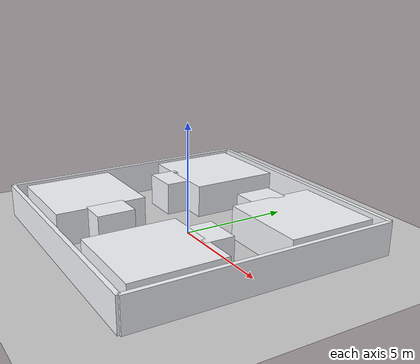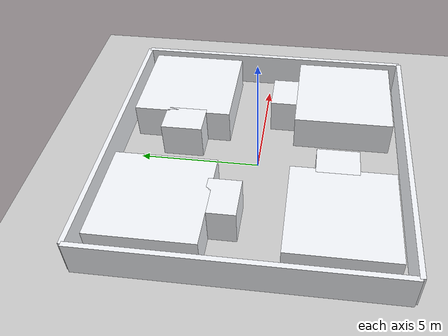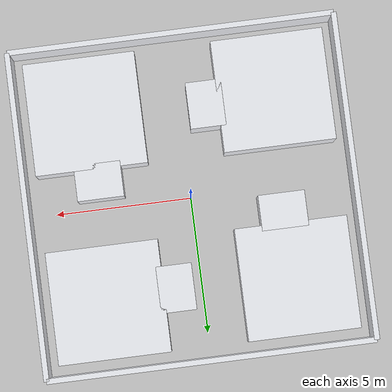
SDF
<?xml version="1.0" ?>
<sdf version="1.6">
<world name="interaction_hub">
  <plugin name='gazebo_ros_state' filename='libgazebo_ros_state.so'>
    <ros>
      <argument>model_states:=model_states_demo</argument>
    </ros>
    <update_rate>1.0</update_rate>
  </plugin>

  <include>
    <uri>model://ground_plane</uri>
  </include>
  <light name="studio_sun" type="directional">
    <cast_shadows>1</cast_shadows>
    <pose>0 0 18 0 -0.35 0.2</pose>
    <diffuse>0.96 0.94 0.90 1</diffuse>
    <specular>0.16 0.16 0.16 1</specular>
    <attenuation>
      <range>1000</range>
      <constant>0.82</constant>
      <linear>0.006</linear>
      <quadratic>0.0008</quadratic>
    </attenuation>
    <direction>-0.35 0.18 -0.92</direction>
  </light>
  <light name="fill_light" type="point">
    <pose>0 0 8 0 0 0</pose>
    <diffuse>0.40 0.45 0.50 1</diffuse>
    <specular>0.03 0.03 0.03 1</specular>
    <attenuation>
      <range>28</range>
      <constant>0.72</constant>
      <linear>0.02</linear>
      <quadratic>0.001</quadratic>
    </attenuation>
  </light>
  <scene>
    <ambient>0.56 0.58 0.62 1</ambient>
    <background>0.90 0.93 0.98 1</background>
    <shadows>1</shadows>
  </scene>

  <model name="b_north">
    <static>true</static>
    <pose>0.00 6.00 0.75 0 0 0</pose>
    <link name="link">
      <collision name="collision">
        <geometry>
          <box><size>12.00 0.20 1.5</size></box>
        </geometry>
      </collision>
      <visual name="visual">
        <geometry>
          <box><size>12.00 0.20 1.5</size></box>
        </geometry>
        <cast_shadows>true</cast_shadows>
        <material>
          <ambient>0.88 0.90 0.94 1</ambient>
          <diffuse>0.96 0.97 0.99 1</diffuse>
          <specular>0.08 0.08 0.09 1</specular>
          <emissive>0 0 0 1</emissive>
        </material>
      </visual>
    </link>
  </model>

  <model name="b_south">
    <static>true</static>
    <pose>0.00 -6.00 0.75 0 0 0</pose>
    <link name="link">
      <collision name="collision">
        <geometry>
          <box><size>12.00 0.20 1.5</size></box>
        </geometry>
      </collision>
      <visual name="visual">
        <geometry>
          <box><size>12.00 0.20 1.5</size></box>
        </geometry>
        <cast_shadows>true</cast_shadows>
        <material>
          <ambient>0.88 0.90 0.94 1</ambient>
          <diffuse>0.96 0.97 0.99 1</diffuse>
          <specular>0.08 0.08 0.09 1</specular>
          <emissive>0 0 0 1</emissive>
        </material>
      </visual>
    </link>
  </model>

  <model name="b_east">
    <static>true</static>
    <pose>6.00 0.00 0.75 0 0 0</pose>
    <link name="link">
      <collision name="collision">
        <geometry>
          <box><size>0.20 12.00 1.5</size></box>
        </geometry>
      </collision>
      <visual name="visual">
        <geometry>
          <box><size>0.20 12.00 1.5</size></box>
        </geometry>
        <cast_shadows>true</cast_shadows>
        <material>
          <ambient>0.88 0.90 0.94 1</ambient>
          <diffuse>0.96 0.97 0.99 1</diffuse>
          <specular>0.08 0.08 0.09 1</specular>
          <emissive>0 0 0 1</emissive>
        </material>
      </visual>
    </link>
  </model>

  <model name="b_west">
    <static>true</static>
    <pose>-6.00 0.00 0.75 0 0 0</pose>
    <link name="link">
      <collision name="collision">
        <geometry>
          <box><size>0.20 12.00 1.5</size></box>
        </geometry>
      </collision>
      <visual name="visual">
        <geometry>
          <box><size>0.20 12.00 1.5</size></box>
        </geometry>
        <cast_shadows>true</cast_shadows>
        <material>
          <ambient>0.88 0.90 0.94 1</ambient>
          <diffuse>0.96 0.97 0.99 1</diffuse>
          <specular>0.08 0.08 0.09 1</specular>
          <emissive>0 0 0 1</emissive>
        </material>
      </visual>
    </link>
  </model>

  <model name="quad_sw">
    <static>true</static>
    <pose>-3.45 -3.45 0.75 0 0 0</pose>
    <link name="link">
      <collision name="collision">
        <geometry>
          <box><size>4.10 4.10 1.5</size></box>
        </geometry>
      </collision>
      <visual name="visual">
        <geometry>
          <box><size>4.10 4.10 1.5</size></box>
        </geometry>
        <cast_shadows>true</cast_shadows>
        <material>
          <ambient>0.88 0.90 0.94 1</ambient>
          <diffuse>0.96 0.97 0.99 1</diffuse>
          <specular>0.08 0.08 0.09 1</specular>
          <emissive>0 0 0 1</emissive>
        </material>
      </visual>
    </link>
  </model>

  <model name="quad_nw">
    <static>true</static>
    <pose>-3.45 3.45 0.75 0 0 0</pose>
    <link name="link">
      <collision name="collision">
        <geometry>
          <box><size>4.10 4.10 1.5</size></box>
        </geometry>
      </collision>
      <visual name="visual">
        <geometry>
          <box><size>4.10 4.10 1.5</size></box>
        </geometry>
        <cast_shadows>true</cast_shadows>
        <material>
          <ambient>0.88 0.90 0.94 1</ambient>
          <diffuse>0.96 0.97 0.99 1</diffuse>
          <specular>0.08 0.08 0.09 1</specular>
          <emissive>0 0 0 1</emissive>
        </material>
      </visual>
    </link>
  </model>

  <model name="quad_se">
    <static>true</static>
    <pose>3.45 -3.45 0.75 0 0 0</pose>
    <link name="link">
      <collision name="collision">
        <geometry>
          <box><size>4.10 4.10 1.5</size></box>
        </geometry>
      </collision>
      <visual name="visual">
        <geometry>
          <box><size>4.10 4.10 1.5</size></box>
        </geometry>
        <cast_shadows>true</cast_shadows>
        <material>
          <ambient>0.88 0.90 0.94 1</ambient>
          <diffuse>0.96 0.97 0.99 1</diffuse>
          <specular>0.08 0.08 0.09 1</specular>
          <emissive>0 0 0 1</emissive>
        </material>
      </visual>
    </link>
  </model>

  <model name="quad_ne">
    <static>true</static>
    <pose>3.45 3.45 0.75 0 0 0</pose>
    <link name="link">
      <collision name="collision">
        <geometry>
          <box><size>4.10 4.10 1.5</size></box>
        </geometry>
      </collision>
      <visual name="visual">
        <geometry>
          <box><size>4.10 4.10 1.5</size></box>
        </geometry>
        <cast_shadows>true</cast_shadows>
        <material>
          <ambient>0.88 0.90 0.94 1</ambient>
          <diffuse>0.96 0.97 0.99 1</diffuse>
          <specular>0.08 0.08 0.09 1</specular>
          <emissive>0 0 0 1</emissive>
        </material>
      </visual>
    </link>
  </model>

  <model name="west_gate_upper">
    <static>true</static>
    <pose>-3.25 0.95 0.75 0 0 0</pose>
    <link name="link">
      <collision name="collision">
        <geometry>
          <box><size>1.70 1.30 1.5</size></box>
        </geometry>
      </collision>
      <visual name="visual">
        <geometry>
          <box><size>1.70 1.30 1.5</size></box>
        </geometry>
        <cast_shadows>true</cast_shadows>
        <material>
          <ambient>0.88 0.90 0.94 1</ambient>
          <diffuse>0.96 0.97 0.99 1</diffuse>
          <specular>0.08 0.08 0.09 1</specular>
          <emissive>0 0 0 1</emissive>
        </material>
      </visual>
    </link>
  </model>

  <model name="east_gate_lower">
    <static>true</static>
    <pose>3.25 -0.95 0.75 0 0 0</pose>
    <link name="link">
      <collision name="collision">
        <geometry>
          <box><size>1.70 1.30 1.5</size></box>
        </geometry>
      </collision>
      <visual name="visual">
        <geometry>
          <box><size>1.70 1.30 1.5</size></box>
        </geometry>
        <cast_shadows>true</cast_shadows>
        <material>
          <ambient>0.88 0.90 0.94 1</ambient>
          <diffuse>0.96 0.97 0.99 1</diffuse>
          <specular>0.08 0.08 0.09 1</specular>
          <emissive>0 0 0 1</emissive>
        </material>
      </visual>
    </link>
  </model>

  <model name="south_gate_left">
    <static>true</static>
    <pose>-0.95 -3.25 0.75 0 0 0</pose>
    <link name="link">
      <collision name="collision">
        <geometry>
          <box><size>1.30 1.70 1.5</size></box>
        </geometry>
      </collision>
      <visual name="visual">
        <geometry>
          <box><size>1.30 1.70 1.5</size></box>
        </geometry>
        <cast_shadows>true</cast_shadows>
        <material>
          <ambient>0.88 0.90 0.94 1</ambient>
          <diffuse>0.96 0.97 0.99 1</diffuse>
          <specular>0.08 0.08 0.09 1</specular>
          <emissive>0 0 0 1</emissive>
        </material>
      </visual>
    </link>
  </model>

  <model name="north_gate_right">
    <static>true</static>
    <pose>0.95 3.25 0.75 0 0 0</pose>
    <link name="link">
      <collision name="collision">
        <geometry>
          <box><size>1.30 1.70 1.5</size></box>
        </geometry>
      </collision>
      <visual name="visual">
        <geometry>
          <box><size>1.30 1.70 1.5</size></box>
        </geometry>
        <cast_shadows>true</cast_shadows>
        <material>
          <ambient>0.88 0.90 0.94 1</ambient>
          <diffuse>0.96 0.97 0.99 1</diffuse>
          <specular>0.08 0.08 0.09 1</specular>
          <emissive>0 0 0 1</emissive>
        </material>
      </visual>
    </link>
  </model>

  <!-- 动态障碍物 dyn_obs_0~7，默认停在各臂远端，启动后由 obstacle_mover 接管 -->
  <model name="dyn_obs_0">
    <static>true</static>
    <pose>-5.0 -2.4 0.4 0 0 0</pose>
    <link name="link">
      <collision name="collision"><geometry><cylinder><radius>0.22</radius><length>0.8</length></cylinder></geometry></collision>
      <visual name="visual"><geometry><cylinder><radius>0.22</radius><length>0.8</length></cylinder></geometry>
        <cast_shadows>true</cast_shadows>
        <material><ambient>0.52 0.30 0.10 1</ambient><diffuse>0.86 0.52 0.18 1</diffuse><specular>0.08 0.06 0.04 1</specular><emissive>0 0 0 1</emissive></material></visual>
    </link>
  </model>

  <model name="dyn_obs_1">
    <static>true</static>
    <pose>-5.0 2.4 0.4 0 0 0</pose>
    <link name="link">
      <collision name="collision"><geometry><cylinder><radius>0.22</radius><length>0.8</length></cylinder></geometry></collision>
      <visual name="visual"><geometry><cylinder><radius>0.22</radius><length>0.8</length></cylinder></geometry>
        <cast_shadows>true</cast_shadows>
        <material><ambient>0.52 0.30 0.10 1</ambient><diffuse>0.86 0.52 0.18 1</diffuse><specular>0.08 0.06 0.04 1</specular><emissive>0 0 0 1</emissive></material></visual>
    </link>
  </model>

  <model name="dyn_obs_2">
    <static>true</static>
    <pose>-2.4 -5.0 0.4 0 0 0</pose>
    <link name="link">
      <collision name="collision"><geometry><cylinder><radius>0.22</radius><length>0.8</length></cylinder></geometry></collision>
      <visual name="visual"><geometry><cylinder><radius>0.22</radius><length>0.8</length></cylinder></geometry>
        <cast_shadows>true</cast_shadows>
        <material><ambient>0.52 0.30 0.10 1</ambient><diffuse>0.86 0.52 0.18 1</diffuse><specular>0.08 0.06 0.04 1</specular><emissive>0 0 0 1</emissive></material></visual>
    </link>
  </model>

  <model name="dyn_obs_3">
    <static>true</static>
    <pose>2.4 -5.0 0.4 0 0 0</pose>
    <link name="link">
      <collision name="collision"><geometry><cylinder><radius>0.22</radius><length>0.8</length></cylinder></geometry></collision>
      <visual name="visual"><geometry><cylinder><radius>0.22</radius><length>0.8</length></cylinder></geometry>
        <cast_shadows>true</cast_shadows>
        <material><ambient>0.52 0.30 0.10 1</ambient><diffuse>0.86 0.52 0.18 1</diffuse><specular>0.08 0.06 0.04 1</specular><emissive>0 0 0 1</emissive></material></visual>
    </link>
  </model>

  <model name="dyn_obs_4">
    <static>true</static>
    <pose>5.0 -2.4 0.4 0 0 0</pose>
    <link name="link">
      <collision name="collision"><geometry><cylinder><radius>0.22</radius><length>0.8</length></cylinder></geometry></collision>
      <visual name="visual"><geometry><cylinder><radius>0.22</radius><length>0.8</length></cylinder></geometry>
        <cast_shadows>true</cast_shadows>
        <material><ambient>0.52 0.30 0.10 1</ambient><diffuse>0.86 0.52 0.18 1</diffuse><specular>0.08 0.06 0.04 1</specular><emissive>0 0 0 1</emissive></material></visual>
    </link>
  </model>

  <model name="dyn_obs_5">
    <static>true</static>
    <pose>5.0 2.4 0.4 0 0 0</pose>
    <link name="link">
      <collision name="collision"><geometry><cylinder><radius>0.22</radius><length>0.8</length></cylinder></geometry></collision>
      <visual name="visual"><geometry><cylinder><radius>0.22</radius><length>0.8</length></cylinder></geometry>
        <cast_shadows>true</cast_shadows>
        <material><ambient>0.52 0.30 0.10 1</ambient><diffuse>0.86 0.52 0.18 1</diffuse><specular>0.08 0.06 0.04 1</specular><emissive>0 0 0 1</emissive></material></visual>
    </link>
  </model>

  <model name="dyn_obs_6">
    <static>true</static>
    <pose>-2.4 5.0 0.4 0 0 0</pose>
    <link name="link">
      <collision name="collision"><geometry><cylinder><radius>0.22</radius><length>0.8</length></cylinder></geometry></collision>
      <visual name="visual"><geometry><cylinder><radius>0.22</radius><length>0.8</length></cylinder></geometry>
        <cast_shadows>true</cast_shadows>
        <material><ambient>0.52 0.30 0.10 1</ambient><diffuse>0.86 0.52 0.18 1</diffuse><specular>0.08 0.06 0.04 1</specular><emissive>0 0 0 1</emissive></material></visual>
    </link>
  </model>

  <model name="dyn_obs_7">
    <static>true</static>
    <pose>2.4 5.0 0.4 0 0 0</pose>
    <link name="link">
      <collision name="collision"><geometry><cylinder><radius>0.22</radius><length>0.8</length></cylinder></geometry></collision>
      <visual name="visual"><geometry><cylinder><radius>0.22</radius><length>0.8</length></cylinder></geometry>
        <cast_shadows>true</cast_shadows>
        <material><ambient>0.52 0.30 0.10 1</ambient><diffuse>0.86 0.52 0.18 1</diffuse><specular>0.08 0.06 0.04 1</specular><emissive>0 0 0 1</emissive></material></visual>
    </link>
  </model>

</world>
</sdf>
